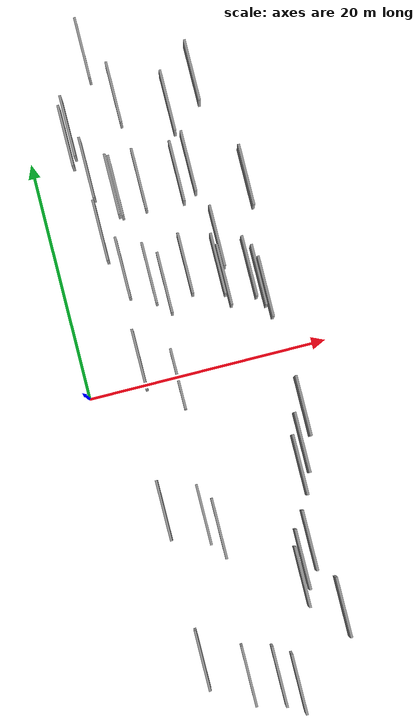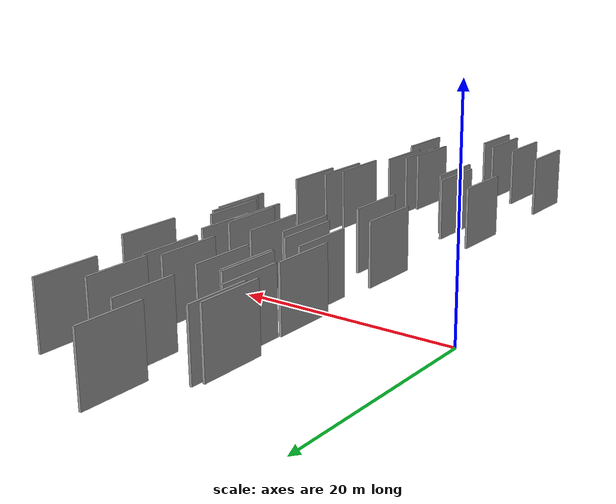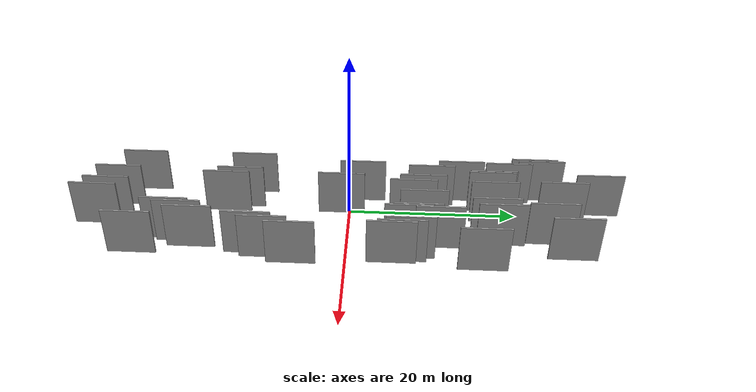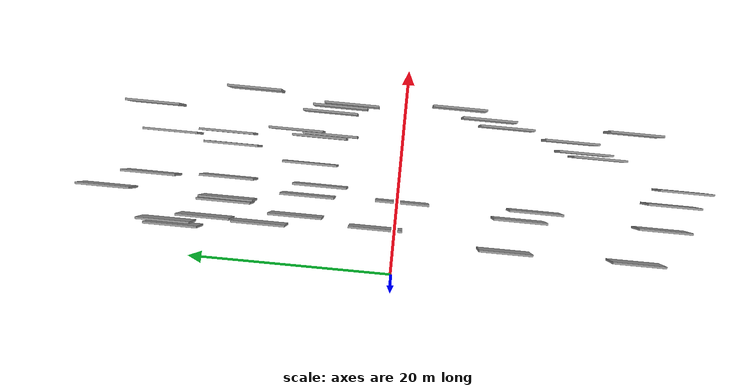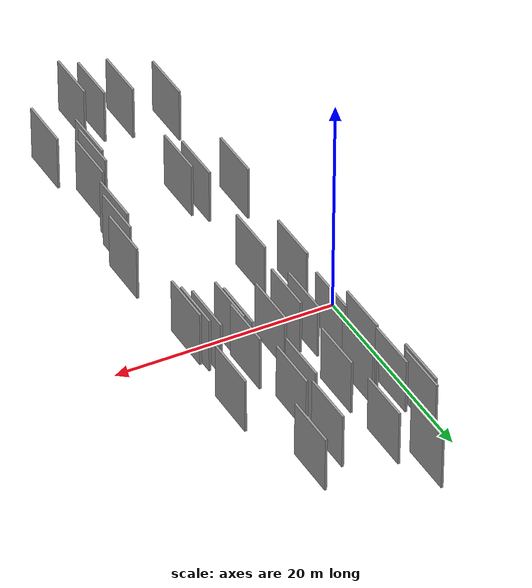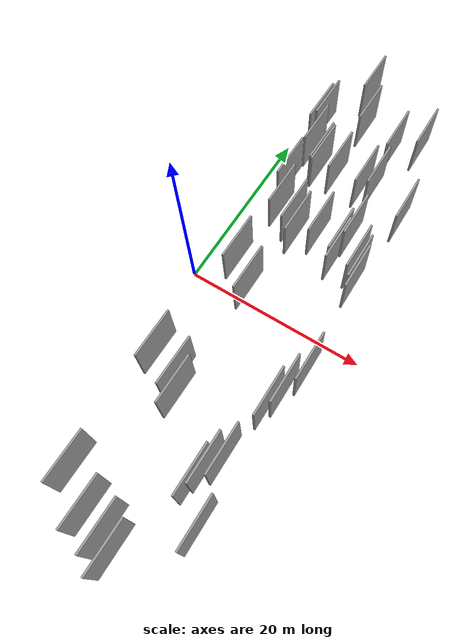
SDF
<sdf version="1.6">
 <world name="default">
  <scene>
   <sky><clouds><speed>12</speed></clouds></sky>
   <ambient>0.4 0.4 0.4 1</ambient>
   <background>0.7 0.7 0.7 1</background>
   <shadows>1</shadows>
  </scene>
  <gravity>0 0 -9.8066</gravity>
  <magnetic_field>6e-06 2.3e-05 -4.2e-05</magnetic_field>
  <physics default="0" name="default_physics" type="ode">
   <ode>
    <solver>
     <type>quick</type>
     <iters>10</iters>
     <sor>1.0</sor>
     <use_dynamic_moi_rescaling>0</use_dynamic_moi_rescaling>
    </solver>
    <constraints>
     <cfm>0</cfm>
     <erp>0.2</erp>
     <contact_max_correcting_vel>100</contact_max_correcting_vel>
     <contact_surface_layer>0.001</contact_surface_layer>
    </constraints>
   </ode>
   <max_step_size>0.004</max_step_size>
   <real_time_factor>1</real_time_factor>
   <real_time_update_rate>250</real_time_update_rate>
  </physics>
  <light name="sun" type="directional">
   <pose>0 0 10 0 0 0</pose>
   <diffuse>0.8 0.8 0.8 1</diffuse>
   <specular>0.2 0.2 0.2 1</specular>
   <attenuation>
    <range>1000</range>
    <constant>0.9</constant>
    <linear>0.01</linear>
    <quadratic>0.001</quadratic>
   </attenuation>
   <direction>-0.5 0.1 -0.9</direction>
  </light>
  <model name="grey_wall_1">
   <static>1</static>
   <pose>14.5631 23.2914 5.0 0.000000 0.000000 1.570796</pose>
   <link name="link">
    <pose>0 0 2.50 0 0 0</pose>
    <collision name="collision"><geometry><box><size>5.00 0.2 5.00</size></box></geometry></collision>
    <visual name="visual">
     <cast_shadows>0</cast_shadows>
     <geometry><box><size>5.00 0.2 5.00</size></box></geometry>
     <material>
      <script>
       <uri>model://grey_wall/materials/scripts</uri>
       <uri>model://grey_wall/materials/textures</uri>
       <name>vrc/grey_wall</name>
      </script>
     </material>
    </visual>
   </link>
  </model>
  <model name="grey_wall_2">
   <static>1</static>
   <pose>6.7429 -11.4230 5.0 0.000000 0.000000 1.570796</pose>
   <link name="link">
    <pose>0 0 2.50 0 0 0</pose>
    <collision name="collision"><geometry><box><size>5.00 0.2 5.00</size></box></geometry></collision>
    <visual name="visual">
     <cast_shadows>0</cast_shadows>
     <geometry><box><size>5.00 0.2 5.00</size></box></geometry>
     <material>
      <script>
       <uri>model://grey_wall/materials/scripts</uri>
       <uri>model://grey_wall/materials/textures</uri>
       <name>vrc/grey_wall</name>
      </script>
     </material>
    </visual>
   </link>
  </model>
  <model name="grey_wall_3">
   <static>1</static>
   <pose>4.2946 12.6466 5.0 0.000000 0.000000 1.570796</pose>
   <link name="link">
    <pose>0 0 2.50 0 0 0</pose>
    <collision name="collision"><geometry><box><size>5.00 0.2 5.00</size></box></geometry></collision>
    <visual name="visual">
     <cast_shadows>0</cast_shadows>
     <geometry><box><size>5.00 0.2 5.00</size></box></geometry>
     <material>
      <script>
       <uri>model://grey_wall/materials/scripts</uri>
       <uri>model://grey_wall/materials/textures</uri>
       <name>vrc/grey_wall</name>
      </script>
     </material>
    </visual>
   </link>
  </model>
  <model name="grey_wall_4">
   <static>1</static>
   <pose>13.0444 6.7686 5.0 0.000000 0.000000 1.570796</pose>
   <link name="link">
    <pose>0 0 2.50 0 0 0</pose>
    <collision name="collision"><geometry><box><size>5.00 0.2 5.00</size></box></geometry></collision>
    <visual name="visual">
     <cast_shadows>0</cast_shadows>
     <geometry><box><size>5.00 0.2 5.00</size></box></geometry>
     <material>
      <script>
       <uri>model://grey_wall/materials/scripts</uri>
       <uri>model://grey_wall/materials/textures</uri>
       <name>vrc/grey_wall</name>
      </script>
     </material>
    </visual>
   </link>
  </model>
  <model name="grey_wall_5">
   <static>1</static>
   <pose>8.2656 7.3176 5.0 0.000000 0.000000 1.570796</pose>
   <link name="link">
    <pose>0 0 2.50 0 0 0</pose>
    <collision name="collision"><geometry><box><size>5.00 0.2 5.00</size></box></geometry></collision>
    <visual name="visual">
     <cast_shadows>0</cast_shadows>
     <geometry><box><size>5.00 0.2 5.00</size></box></geometry>
     <material>
      <script>
       <uri>model://grey_wall/materials/scripts</uri>
       <uri>model://grey_wall/materials/textures</uri>
       <name>vrc/grey_wall</name>
      </script>
     </material>
    </visual>
   </link>
  </model>
  <model name="grey_wall_6">
   <static>1</static>
   <pose>10.2420 8.4115 5.0 0.000000 0.000000 1.570796</pose>
   <link name="link">
    <pose>0 0 2.50 0 0 0</pose>
    <collision name="collision"><geometry><box><size>5.00 0.2 5.00</size></box></geometry></collision>
    <visual name="visual">
     <cast_shadows>0</cast_shadows>
     <geometry><box><size>5.00 0.2 5.00</size></box></geometry>
     <material>
      <script>
       <uri>model://grey_wall/materials/scripts</uri>
       <uri>model://grey_wall/materials/textures</uri>
       <name>vrc/grey_wall</name>
      </script>
     </material>
    </visual>
   </link>
  </model>
  <model name="grey_wall_7">
   <static>1</static>
   <pose>15.1976 -9.4629 5.0 0.000000 0.000000 1.570796</pose>
   <link name="link">
    <pose>0 0 2.50 0 0 0</pose>
    <collision name="collision"><geometry><box><size>5.00 0.2 5.00</size></box></geometry></collision>
    <visual name="visual">
     <cast_shadows>0</cast_shadows>
     <geometry><box><size>5.00 0.2 5.00</size></box></geometry>
     <material>
      <script>
       <uri>model://grey_wall/materials/scripts</uri>
       <uri>model://grey_wall/materials/textures</uri>
       <name>vrc/grey_wall</name>
      </script>
     </material>
    </visual>
   </link>
  </model>
  <model name="grey_wall_8">
   <static>1</static>
   <pose>10.8056 -26.3976 5.0 0.000000 0.000000 1.570796</pose>
   <link name="link">
    <pose>0 0 2.50 0 0 0</pose>
    <collision name="collision"><geometry><box><size>5.00 0.2 5.00</size></box></geometry></collision>
    <visual name="visual">
     <cast_shadows>0</cast_shadows>
     <geometry><box><size>5.00 0.2 5.00</size></box></geometry>
     <material>
      <script>
       <uri>model://grey_wall/materials/scripts</uri>
       <uri>model://grey_wall/materials/textures</uri>
       <name>vrc/grey_wall</name>
      </script>
     </material>
    </visual>
   </link>
  </model>
  <model name="grey_wall_9">
   <static>1</static>
   <pose>6.0921 15.9930 5.0 0.000000 0.000000 1.570796</pose>
   <link name="link">
    <pose>0 0 2.50 0 0 0</pose>
    <collision name="collision"><geometry><box><size>5.00 0.2 5.00</size></box></geometry></collision>
    <visual name="visual">
     <cast_shadows>0</cast_shadows>
     <geometry><box><size>5.00 0.2 5.00</size></box></geometry>
     <material>
      <script>
       <uri>model://grey_wall/materials/scripts</uri>
       <uri>model://grey_wall/materials/textures</uri>
       <name>vrc/grey_wall</name>
      </script>
     </material>
    </visual>
   </link>
  </model>
  <model name="grey_wall_10">
   <static>1</static>
   <pose>7.0727 -24.7977 5.0 0.000000 0.000000 1.570796</pose>
   <link name="link">
    <pose>0 0 2.50 0 0 0</pose>
    <collision name="collision"><geometry><box><size>5.00 0.2 5.00</size></box></geometry></collision>
    <visual name="visual">
     <cast_shadows>0</cast_shadows>
     <geometry><box><size>5.00 0.2 5.00</size></box></geometry>
     <material>
      <script>
       <uri>model://grey_wall/materials/scripts</uri>
       <uri>model://grey_wall/materials/textures</uri>
       <name>vrc/grey_wall</name>
      </script>
     </material>
    </visual>
   </link>
  </model>
  <model name="grey_wall_11">
   <static>1</static>
   <pose>12.7846 7.7467 5.0 0.000000 0.000000 1.570796</pose>
   <link name="link">
    <pose>0 0 2.50 0 0 0</pose>
    <collision name="collision"><geometry><box><size>5.00 0.2 5.00</size></box></geometry></collision>
    <visual name="visual">
     <cast_shadows>0</cast_shadows>
     <geometry><box><size>5.00 0.2 5.00</size></box></geometry>
     <material>
      <script>
       <uri>model://grey_wall/materials/scripts</uri>
       <uri>model://grey_wall/materials/textures</uri>
       <name>vrc/grey_wall</name>
      </script>
     </material>
    </visual>
   </link>
  </model>
  <model name="grey_wall_12">
   <static>1</static>
   <pose>12.0679 21.4258 5.0 0.000000 0.000000 1.570796</pose>
   <link name="link">
    <pose>0 0 2.50 0 0 0</pose>
    <collision name="collision"><geometry><box><size>5.00 0.2 5.00</size></box></geometry></collision>
    <visual name="visual">
     <cast_shadows>0</cast_shadows>
     <geometry><box><size>5.00 0.2 5.00</size></box></geometry>
     <material>
      <script>
       <uri>model://grey_wall/materials/scripts</uri>
       <uri>model://grey_wall/materials/textures</uri>
       <name>vrc/grey_wall</name>
      </script>
     </material>
    </visual>
   </link>
  </model>
  <model name="grey_wall_13">
   <static>1</static>
   <pose>5.2970 9.3334 5.0 0.000000 0.000000 1.570796</pose>
   <link name="link">
    <pose>0 0 2.50 0 0 0</pose>
    <collision name="collision"><geometry><box><size>5.00 0.2 5.00</size></box></geometry></collision>
    <visual name="visual">
     <cast_shadows>0</cast_shadows>
     <geometry><box><size>5.00 0.2 5.00</size></box></geometry>
     <material>
      <script>
       <uri>model://grey_wall/materials/scripts</uri>
       <uri>model://grey_wall/materials/textures</uri>
       <name>vrc/grey_wall</name>
      </script>
     </material>
    </visual>
   </link>
  </model>
  <model name="grey_wall_14">
   <static>1</static>
   <pose>7.2584 8.3794 5.0 0.000000 0.000000 1.570796</pose>
   <link name="link">
    <pose>0 0 2.50 0 0 0</pose>
    <collision name="collision"><geometry><box><size>5.00 0.2 5.00</size></box></geometry></collision>
    <visual name="visual">
     <cast_shadows>0</cast_shadows>
     <geometry><box><size>5.00 0.2 5.00</size></box></geometry>
     <material>
      <script>
       <uri>model://grey_wall/materials/scripts</uri>
       <uri>model://grey_wall/materials/textures</uri>
       <name>vrc/grey_wall</name>
      </script>
     </material>
    </visual>
   </link>
  </model>
  <model name="grey_wall_15">
   <static>1</static>
   <pose>8.0335 23.1206 5.0 0.000000 0.000000 1.570796</pose>
   <link name="link">
    <pose>0 0 2.50 0 0 0</pose>
    <collision name="collision"><geometry><box><size>5.00 0.2 5.00</size></box></geometry></collision>
    <visual name="visual">
     <cast_shadows>0</cast_shadows>
     <geometry><box><size>5.00 0.2 5.00</size></box></geometry>
     <material>
      <script>
       <uri>model://grey_wall/materials/scripts</uri>
       <uri>model://grey_wall/materials/textures</uri>
       <name>vrc/grey_wall</name>
      </script>
     </material>
    </visual>
   </link>
  </model>
  <model name="grey_wall_16">
   <static>1</static>
   <pose>13.5373 -16.8339 5.0 0.000000 0.000000 1.570796</pose>
   <link name="link">
    <pose>0 0 2.50 0 0 0</pose>
    <collision name="collision"><geometry><box><size>5.00 0.2 5.00</size></box></geometry></collision>
    <visual name="visual">
     <cast_shadows>0</cast_shadows>
     <geometry><box><size>5.00 0.2 5.00</size></box></geometry>
     <material>
      <script>
       <uri>model://grey_wall/materials/scripts</uri>
       <uri>model://grey_wall/materials/textures</uri>
       <name>vrc/grey_wall</name>
      </script>
     </material>
    </visual>
   </link>
  </model>
  <model name="grey_wall_17">
   <static>1</static>
   <pose>12.4964 16.2960 5.0 0.000000 0.000000 1.570796</pose>
   <link name="link">
    <pose>0 0 2.50 0 0 0</pose>
    <collision name="collision"><geometry><box><size>5.00 0.2 5.00</size></box></geometry></collision>
    <visual name="visual">
     <cast_shadows>0</cast_shadows>
     <geometry><box><size>5.00 0.2 5.00</size></box></geometry>
     <material>
      <script>
       <uri>model://grey_wall/materials/scripts</uri>
       <uri>model://grey_wall/materials/textures</uri>
       <name>vrc/grey_wall</name>
      </script>
     </material>
    </visual>
   </link>
  </model>
  <model name="grey_wall_18">
   <static>1</static>
   <pose>13.1670 -18.1890 5.0 0.000000 0.000000 1.570796</pose>
   <link name="link">
    <pose>0 0 2.50 0 0 0</pose>
    <collision name="collision"><geometry><box><size>5.00 0.2 5.00</size></box></geometry></collision>
    <visual name="visual">
     <cast_shadows>0</cast_shadows>
     <geometry><box><size>5.00 0.2 5.00</size></box></geometry>
     <material>
      <script>
       <uri>model://grey_wall/materials/scripts</uri>
       <uri>model://grey_wall/materials/textures</uri>
       <name>vrc/grey_wall</name>
      </script>
     </material>
    </visual>
   </link>
  </model>
  <model name="grey_wall_19">
   <static>1</static>
   <pose>4.4450 17.7825 5.0 0.000000 0.000000 1.570796</pose>
   <link name="link">
    <pose>0 0 2.50 0 0 0</pose>
    <collision name="collision"><geometry><box><size>5.00 0.2 5.00</size></box></geometry></collision>
    <visual name="visual">
     <cast_shadows>0</cast_shadows>
     <geometry><box><size>5.00 0.2 5.00</size></box></geometry>
     <material>
      <script>
       <uri>model://grey_wall/materials/scripts</uri>
       <uri>model://grey_wall/materials/textures</uri>
       <name>vrc/grey_wall</name>
      </script>
     </material>
    </visual>
   </link>
  </model>
  <model name="grey_wall_20">
   <static>1</static>
   <pose>16.7213 14.0943 5.0 0.000000 0.000000 1.570796</pose>
   <link name="link">
    <pose>0 0 2.50 0 0 0</pose>
    <collision name="collision"><geometry><box><size>5.00 0.2 5.00</size></box></geometry></collision>
    <visual name="visual">
     <cast_shadows>0</cast_shadows>
     <geometry><box><size>5.00 0.2 5.00</size></box></geometry>
     <material>
      <script>
       <uri>model://grey_wall/materials/scripts</uri>
       <uri>model://grey_wall/materials/textures</uri>
       <name>vrc/grey_wall</name>
      </script>
     </material>
    </visual>
   </link>
  </model>
  <model name="grey_wall_21">
   <static>1</static>
   <pose>15.7364 6.0768 5.0 0.000000 0.000000 1.570796</pose>
   <link name="link">
    <pose>0 0 2.50 0 0 0</pose>
    <collision name="collision"><geometry><box><size>5.00 0.2 5.00</size></box></geometry></collision>
    <visual name="visual">
     <cast_shadows>0</cast_shadows>
     <geometry><box><size>5.00 0.2 5.00</size></box></geometry>
     <material>
      <script>
       <uri>model://grey_wall/materials/scripts</uri>
       <uri>model://grey_wall/materials/textures</uri>
       <name>vrc/grey_wall</name>
      </script>
     </material>
    </visual>
   </link>
  </model>
  <model name="grey_wall_22">
   <static>1</static>
   <pose>9.4288 -25.4288 5.0 0.000000 0.000000 1.570796</pose>
   <link name="link">
    <pose>0 0 2.50 0 0 0</pose>
    <collision name="collision"><geometry><box><size>5.00 0.2 5.00</size></box></geometry></collision>
    <visual name="visual">
     <cast_shadows>0</cast_shadows>
     <geometry><box><size>5.00 0.2 5.00</size></box></geometry>
     <material>
      <script>
       <uri>model://grey_wall/materials/scripts</uri>
       <uri>model://grey_wall/materials/textures</uri>
       <name>vrc/grey_wall</name>
      </script>
     </material>
    </visual>
   </link>
  </model>
  <model name="grey_wall_23">
   <static>1</static>
   <pose>11.3953 15.7597 5.0 0.000000 0.000000 1.570796</pose>
   <link name="link">
    <pose>0 0 2.50 0 0 0</pose>
    <collision name="collision"><geometry><box><size>5.00 0.2 5.00</size></box></geometry></collision>
    <visual name="visual">
     <cast_shadows>0</cast_shadows>
     <geometry><box><size>5.00 0.2 5.00</size></box></geometry>
     <material>
      <script>
       <uri>model://grey_wall/materials/scripts</uri>
       <uri>model://grey_wall/materials/textures</uri>
       <name>vrc/grey_wall</name>
      </script>
     </material>
    </visual>
   </link>
  </model>
  <model name="grey_wall_24">
   <static>1</static>
   <pose>14.4527 -15.5074 5.0 0.000000 0.000000 1.570796</pose>
   <link name="link">
    <pose>0 0 2.50 0 0 0</pose>
    <collision name="collision"><geometry><box><size>5.00 0.2 5.00</size></box></geometry></collision>
    <visual name="visual">
     <cast_shadows>0</cast_shadows>
     <geometry><box><size>5.00 0.2 5.00</size></box></geometry>
     <material>
      <script>
       <uri>model://grey_wall/materials/scripts</uri>
       <uri>model://grey_wall/materials/textures</uri>
       <name>vrc/grey_wall</name>
      </script>
     </material>
    </visual>
   </link>
  </model>
  <model name="grey_wall_25">
   <static>1</static>
   <pose>13.2606 9.9433 5.0 0.000000 0.000000 1.570796</pose>
   <link name="link">
    <pose>0 0 2.50 0 0 0</pose>
    <collision name="collision"><geometry><box><size>5.00 0.2 5.00</size></box></geometry></collision>
    <visual name="visual">
     <cast_shadows>0</cast_shadows>
     <geometry><box><size>5.00 0.2 5.00</size></box></geometry>
     <material>
      <script>
       <uri>model://grey_wall/materials/scripts</uri>
       <uri>model://grey_wall/materials/textures</uri>
       <name>vrc/grey_wall</name>
      </script>
     </material>
    </visual>
   </link>
  </model>
  <model name="grey_wall_26">
   <static>1</static>
   <pose>16.6094 -4.9504 5.0 0.000000 0.000000 1.570796</pose>
   <link name="link">
    <pose>0 0 2.50 0 0 0</pose>
    <collision name="collision"><geometry><box><size>5.00 0.2 5.00</size></box></geometry></collision>
    <visual name="visual">
     <cast_shadows>0</cast_shadows>
     <geometry><box><size>5.00 0.2 5.00</size></box></geometry>
     <material>
      <script>
       <uri>model://grey_wall/materials/scripts</uri>
       <uri>model://grey_wall/materials/textures</uri>
       <name>vrc/grey_wall</name>
      </script>
     </material>
    </visual>
   </link>
  </model>
  <model name="grey_wall_27">
   <static>1</static>
   <pose>3.7172 -10.3448 5.0 0.000000 0.000000 1.570796</pose>
   <link name="link">
    <pose>0 0 2.50 0 0 0</pose>
    <collision name="collision"><geometry><box><size>5.00 0.2 5.00</size></box></geometry></collision>
    <visual name="visual">
     <cast_shadows>0</cast_shadows>
     <geometry><box><size>5.00 0.2 5.00</size></box></geometry>
     <material>
      <script>
       <uri>model://grey_wall/materials/scripts</uri>
       <uri>model://grey_wall/materials/textures</uri>
       <name>vrc/grey_wall</name>
      </script>
     </material>
    </visual>
   </link>
  </model>
  <model name="grey_wall_28">
   <static>1</static>
   <pose>7.4066 -0.4068 5.0 0.000000 0.000000 1.570796</pose>
   <link name="link">
    <pose>0 0 2.50 0 0 0</pose>
    <collision name="collision"><geometry><box><size>5.00 0.2 5.00</size></box></geometry></collision>
    <visual name="visual">
     <cast_shadows>0</cast_shadows>
     <geometry><box><size>5.00 0.2 5.00</size></box></geometry>
     <material>
      <script>
       <uri>model://grey_wall/materials/scripts</uri>
       <uri>model://grey_wall/materials/textures</uri>
       <name>vrc/grey_wall</name>
      </script>
     </material>
    </visual>
   </link>
  </model>
  <model name="grey_wall_29">
   <static>1</static>
   <pose>3.7788 -22.6810 5.0 0.000000 0.000000 1.570796</pose>
   <link name="link">
    <pose>0 0 2.50 0 0 0</pose>
    <collision name="collision"><geometry><box><size>5.00 0.2 5.00</size></box></geometry></collision>
    <visual name="visual">
     <cast_shadows>0</cast_shadows>
     <geometry><box><size>5.00 0.2 5.00</size></box></geometry>
     <material>
      <script>
       <uri>model://grey_wall/materials/scripts</uri>
       <uri>model://grey_wall/materials/textures</uri>
       <name>vrc/grey_wall</name>
      </script>
     </material>
    </visual>
   </link>
  </model>
  <model name="grey_wall_30">
   <static>1</static>
   <pose>6.3471 15.8164 5.0 0.000000 0.000000 1.570796</pose>
   <link name="link">
    <pose>0 0 2.50 0 0 0</pose>
    <collision name="collision"><geometry><box><size>5.00 0.2 5.00</size></box></geometry></collision>
    <visual name="visual">
     <cast_shadows>0</cast_shadows>
     <geometry><box><size>5.00 0.2 5.00</size></box></geometry>
     <material>
      <script>
       <uri>model://grey_wall/materials/scripts</uri>
       <uri>model://grey_wall/materials/textures</uri>
       <name>vrc/grey_wall</name>
      </script>
     </material>
    </visual>
   </link>
  </model>
  <model name="grey_wall_31">
   <static>1</static>
   <pose>15.1636 6.9431 5.0 0.000000 0.000000 1.570796</pose>
   <link name="link">
    <pose>0 0 2.50 0 0 0</pose>
    <collision name="collision"><geometry><box><size>5.00 0.2 5.00</size></box></geometry></collision>
    <visual name="visual">
     <cast_shadows>0</cast_shadows>
     <geometry><box><size>5.00 0.2 5.00</size></box></geometry>
     <material>
      <script>
       <uri>model://grey_wall/materials/scripts</uri>
       <uri>model://grey_wall/materials/textures</uri>
       <name>vrc/grey_wall</name>
      </script>
     </material>
    </visual>
   </link>
  </model>
  <model name="grey_wall_32">
   <static>1</static>
   <pose>7.6553 -12.8101 5.0 0.000000 0.000000 1.570796</pose>
   <link name="link">
    <pose>0 0 2.50 0 0 0</pose>
    <collision name="collision"><geometry><box><size>5.00 0.2 5.00</size></box></geometry></collision>
    <visual name="visual">
     <cast_shadows>0</cast_shadows>
     <geometry><box><size>5.00 0.2 5.00</size></box></geometry>
     <material>
      <script>
       <uri>model://grey_wall/materials/scripts</uri>
       <uri>model://grey_wall/materials/textures</uri>
       <name>vrc/grey_wall</name>
      </script>
     </material>
    </visual>
   </link>
  </model>
  <model name="grey_wall_33">
   <static>1</static>
   <pose>3.4476 20.6826 5.0 0.000000 0.000000 1.570796</pose>
   <link name="link">
    <pose>0 0 2.50 0 0 0</pose>
    <collision name="collision"><geometry><box><size>5.00 0.2 5.00</size></box></geometry></collision>
    <visual name="visual">
     <cast_shadows>0</cast_shadows>
     <geometry><box><size>5.00 0.2 5.00</size></box></geometry>
     <material>
      <script>
       <uri>model://grey_wall/materials/scripts</uri>
       <uri>model://grey_wall/materials/textures</uri>
       <name>vrc/grey_wall</name>
      </script>
     </material>
    </visual>
   </link>
  </model>
  <model name="grey_wall_34">
   <static>1</static>
   <pose>6.4671 27.1836 5.0 0.000000 0.000000 1.570796</pose>
   <link name="link">
    <pose>0 0 2.50 0 0 0</pose>
    <collision name="collision"><geometry><box><size>5.00 0.2 5.00</size></box></geometry></collision>
    <visual name="visual">
     <cast_shadows>0</cast_shadows>
     <geometry><box><size>5.00 0.2 5.00</size></box></geometry>
     <material>
      <script>
       <uri>model://grey_wall/materials/scripts</uri>
       <uri>model://grey_wall/materials/textures</uri>
       <name>vrc/grey_wall</name>
      </script>
     </material>
    </visual>
   </link>
  </model>
  <model name="grey_wall_35">
   <static>1</static>
   <pose>4.7862 1.8454 5.0 0.000000 0.000000 1.570796</pose>
   <link name="link">
    <pose>0 0 2.50 0 0 0</pose>
    <collision name="collision"><geometry><box><size>5.00 0.2 5.00</size></box></geometry></collision>
    <visual name="visual">
     <cast_shadows>0</cast_shadows>
     <geometry><box><size>5.00 0.2 5.00</size></box></geometry>
     <material>
      <script>
       <uri>model://grey_wall/materials/scripts</uri>
       <uri>model://grey_wall/materials/textures</uri>
       <name>vrc/grey_wall</name>
      </script>
     </material>
    </visual>
   </link>
  </model>
  <model name="grey_wall_36">
   <static>1</static>
   <pose>8.3004 15.8912 5.0 0.000000 0.000000 1.570796</pose>
   <link name="link">
    <pose>0 0 2.50 0 0 0</pose>
    <collision name="collision"><geometry><box><size>5.00 0.2 5.00</size></box></geometry></collision>
    <visual name="visual">
     <cast_shadows>0</cast_shadows>
     <geometry><box><size>5.00 0.2 5.00</size></box></geometry>
     <material>
      <script>
       <uri>model://grey_wall/materials/scripts</uri>
       <uri>model://grey_wall/materials/textures</uri>
       <name>vrc/grey_wall</name>
      </script>
     </material>
    </visual>
   </link>
  </model>
  <model name="grey_wall_37">
   <static>1</static>
   <pose>15.7973 -7.7770 5.0 0.000000 0.000000 1.570796</pose>
   <link name="link">
    <pose>0 0 2.50 0 0 0</pose>
    <collision name="collision"><geometry><box><size>5.00 0.2 5.00</size></box></geometry></collision>
    <visual name="visual">
     <cast_shadows>0</cast_shadows>
     <geometry><box><size>5.00 0.2 5.00</size></box></geometry>
     <material>
      <script>
       <uri>model://grey_wall/materials/scripts</uri>
       <uri>model://grey_wall/materials/textures</uri>
       <name>vrc/grey_wall</name>
      </script>
     </material>
    </visual>
   </link>
  </model>
  <model name="grey_wall_38">
   <static>1</static>
   <pose>15.7546 -21.3292 5.0 0.000000 0.000000 1.570796</pose>
   <link name="link">
    <pose>0 0 2.50 0 0 0</pose>
    <collision name="collision"><geometry><box><size>5.00 0.2 5.00</size></box></geometry></collision>
    <visual name="visual">
     <cast_shadows>0</cast_shadows>
     <geometry><box><size>5.00 0.2 5.00</size></box></geometry>
     <material>
      <script>
       <uri>model://grey_wall/materials/scripts</uri>
       <uri>model://grey_wall/materials/textures</uri>
       <name>vrc/grey_wall</name>
      </script>
     </material>
    </visual>
   </link>
  </model>
  <model name="grey_wall_39">
   <static>1</static>
   <pose>16.0304 5.0398 5.0 0.000000 0.000000 1.570796</pose>
   <link name="link">
    <pose>0 0 2.50 0 0 0</pose>
    <collision name="collision"><geometry><box><size>5.00 0.2 5.00</size></box></geometry></collision>
    <visual name="visual">
     <cast_shadows>0</cast_shadows>
     <geometry><box><size>5.00 0.2 5.00</size></box></geometry>
     <material>
      <script>
       <uri>model://grey_wall/materials/scripts</uri>
       <uri>model://grey_wall/materials/textures</uri>
       <name>vrc/grey_wall</name>
      </script>
     </material>
    </visual>
   </link>
  </model>
  <model name="grey_wall_40">
   <static>1</static>
   <pose>3.7903 21.4009 5.0 0.000000 0.000000 1.570796</pose>
   <link name="link">
    <pose>0 0 2.50 0 0 0</pose>
    <collision name="collision"><geometry><box><size>5.00 0.2 5.00</size></box></geometry></collision>
    <visual name="visual">
     <cast_shadows>0</cast_shadows>
     <geometry><box><size>5.00 0.2 5.00</size></box></geometry>
     <material>
      <script>
       <uri>model://grey_wall/materials/scripts</uri>
       <uri>model://grey_wall/materials/textures</uri>
       <name>vrc/grey_wall</name>
      </script>
     </material>
    </visual>
   </link>
  </model>
 </world>
</sdf>
